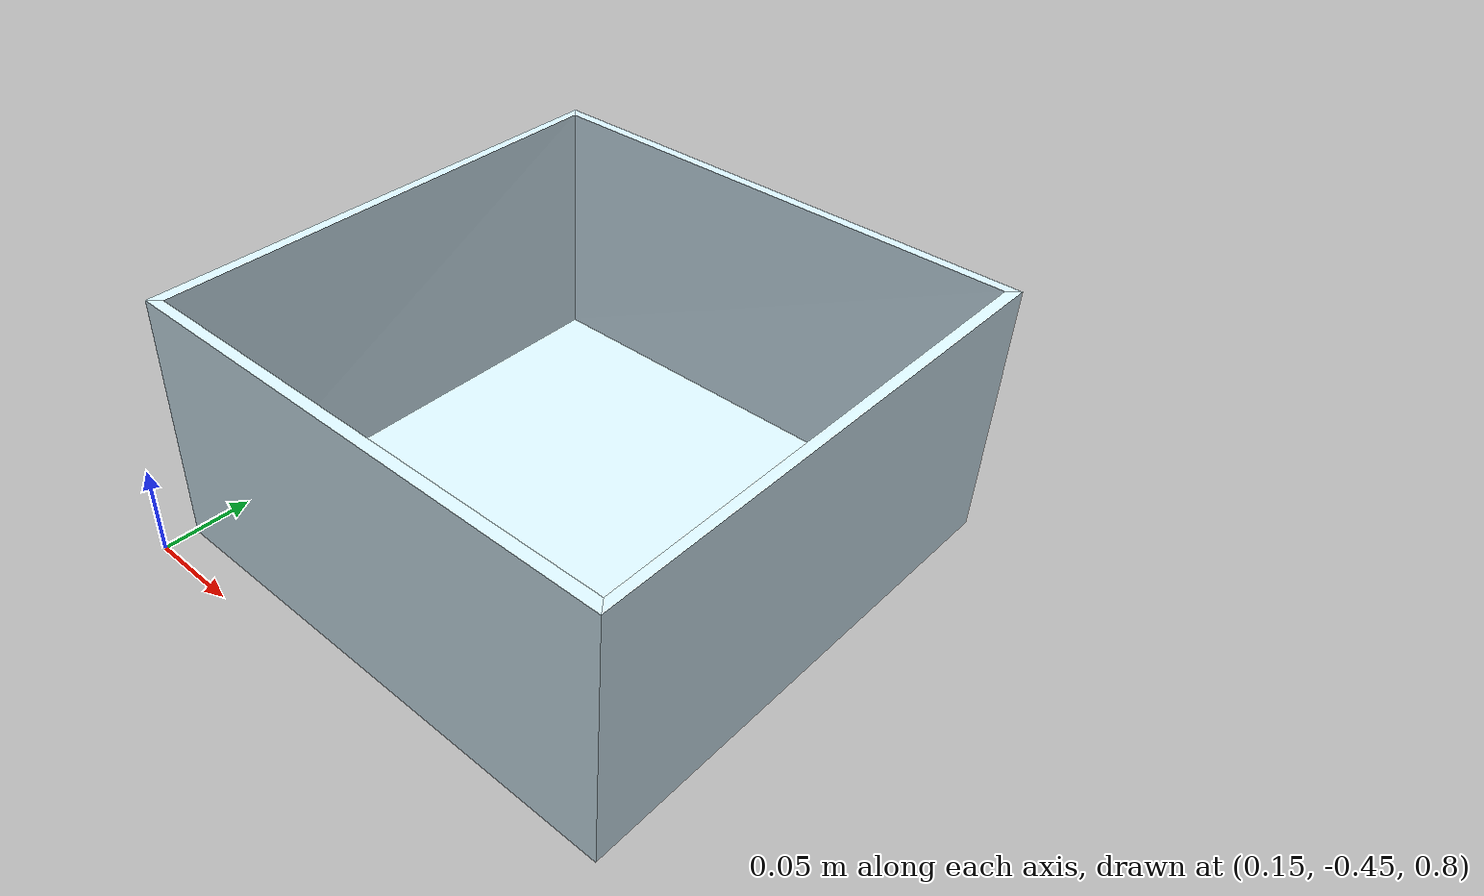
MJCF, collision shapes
<mujoco>
    <asset>
        <mesh name="glass_mesh1" file="asset/aquarium/glass1.obj" scale="0.8 0.8 0.4"/>
        <mesh name="glass_mesh2" file="asset/aquarium/glass2.obj" scale="0.8 0.8 0.4"/>
        <mesh name="glass_mesh3" file="asset/aquarium/glass3.obj" scale="0.8 0.8 0.4"/>
        <mesh name="glass_mesh4" file="asset/aquarium/glass4.obj" scale="0.8 0.8 0.4"/>
        <mesh name="glass_mesh5" file="asset/aquarium/glass5.obj" scale="0.8 0.8 0.4"/>
        <material name="glass_mat"
            rgba="0.85 0.95 1.0 0.25"
            specular="0.85"
            shininess="0.95"/>

        <mesh name="water_mesh" file="asset/aquarium/water.obj" scale="0.8 0.8 0.4"/>
        <material name="water_mat"
            rgba="0.3 0.6 0.9 0.4"
            specular="0.1"
            shininess="0.1"/>

    </asset>

    <worldbody>
        <body name="aquarium" pos="0.3 -0.3 0.88">
            <geom type="mesh"
                  mesh="glass_mesh1"
                  material="glass_mat"
                  mass="1"
                  friction="1.0 3.0 3.0"
                  solimp="0.9 0.95 0.01"
                  solref="0.02 1"
                  group="2"/>
            <geom type="mesh"
                  mesh="glass_mesh2"
                  material="glass_mat"
                  mass="1"
                  friction="1.0 3.0 3.0"
                  solimp="0.9 0.95 0.01"
                  solref="0.02 1"
                  group="2"/>
            <geom type="mesh"
                  mesh="glass_mesh3"
                  material="glass_mat"
                  mass="1"
                  friction="1.0 3.0 3.0"
                  solimp="0.9 0.95 0.01"
                  solref="0.02 1"
                  group="2"/>
            <geom type="mesh"
                  mesh="glass_mesh4"
                  material="glass_mat"
                  mass="1"
                  friction="1.0 3.0 3.0"
                  solimp="0.9 0.95 0.01"
                  solref="0.02 1"
                  group="2"/>
            <geom type="mesh"
                  mesh="glass_mesh5"
                  material="glass_mat"
                  mass="1"
                  friction="1.0 3.0 3.0"
                  solimp="0.9 0.95 0.01"
                  solref="0.02 1"
                  group="2"/>
            <geom type="mesh"
                  mesh="water_mesh"
                  material="water_mat"
                  mass="0"
                  contype="0"
                  conaffinity="0"
                  group="2"/>
        </body>
    </worldbody>
</mujoco>
